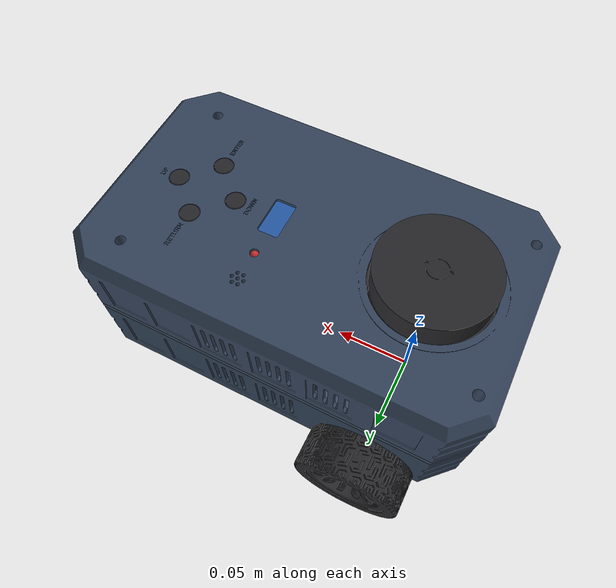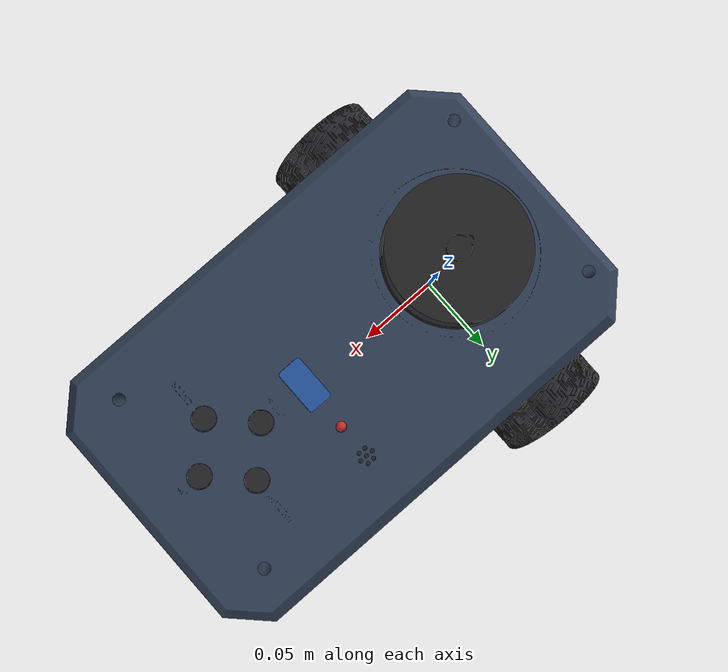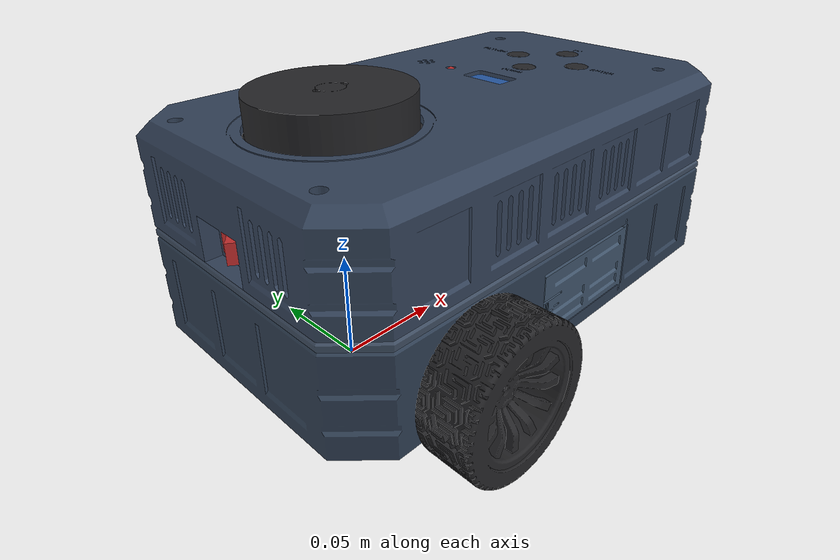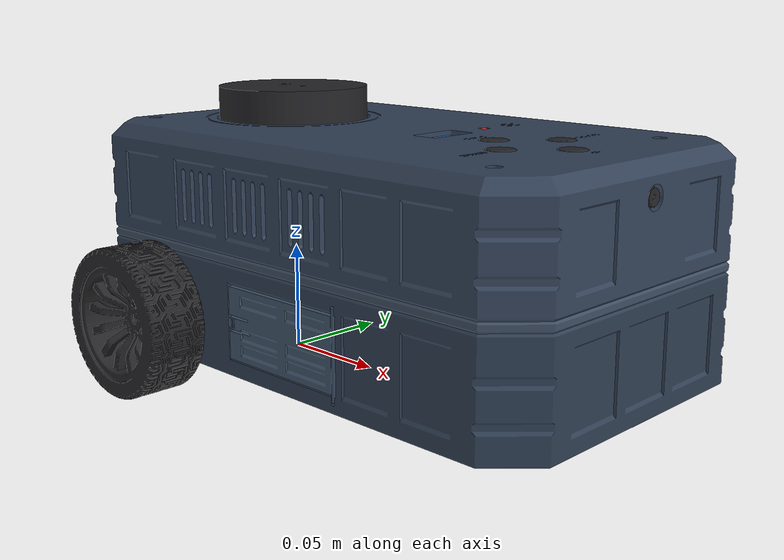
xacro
<?xml version="1.0"?>
<!-- ROS 2 URDF/XACRO Description: ros2_diffdrive_robot                                  -->
<!-- Generated from verified FreeCAD assembly (ROS2_DiffDrive_Robot.FCStd)               -->
<!-- Compatible with my_bot ros2_control, EKF, SLAM Toolbox, Nav2, and Gazebo Classic    -->
<robot xmlns:xacro="http://www.ros.org/wiki/xacro" name="ros2_diffdrive_robot">

  <!-- ========================== 1. XACRO ARGUMENTS ========================== -->
  <xacro:arg name="use_ros2_control" default="true"/>
  <xacro:arg name="use_sim" default="false"/>
  <xacro:arg name="publish_odom_tf" default="true"/>

  <!-- ========================== 2. XACRO PROPERTIES ========================= -->
  <!-- Drive wheels: Ø65.0 mm x 26.0 mm rubber tire, 181.0 mm center-to-center track -->
  <xacro:property name="wheel_radius"     value="0.0325"/>
  <xacro:property name="wheel_width"      value="0.0260"/>
  <xacro:property name="wheel_mass"       value="0.045"/>
  <xacro:property name="wheel_separation" value="0.1810"/>
  <xacro:property name="wheel_x_offset"   value="0.0000"/>
  <xacro:property name="ticks_per_rev"    value="1400"/>

  <!-- Derived wheel cylinder inertia -->
  <xacro:property name="wheel_I_axial" value="${0.5 * wheel_mass * wheel_radius * wheel_radius}"/>
  <xacro:property name="wheel_I_perp"  value="${(1.0/12.0) * wheel_mass * (3.0*wheel_radius*wheel_radius + wheel_width*wheel_width)}"/>

  <!-- JGA25-371 geared DC motor with encoder (Ø25 x 75 mm, gearbox face at |Y| = 69.8 mm) -->
  <xacro:property name="motor_mass"     value="0.085"/>
  <xacro:property name="motor_y_offset" value="0.0698"/>

  <!-- Front 5/8" (15.875 mm) steel ball caster at (X = +165.0 mm, Y = 0.0 mm) -->
  <xacro:property name="caster_radius"   value="0.0079375"/>
  <xacro:property name="caster_mass"     value="0.016"/>
  <xacro:property name="caster_I"        value="${(2.0/5.0) * caster_mass * caster_radius * caster_radius}"/>
  <xacro:property name="caster_x_offset" value="0.1650"/>
  <xacro:property name="base_z_offset"   value="${wheel_radius}"/>
  <xacro:property name="caster_z_offset" value="${caster_radius - wheel_radius}"/>

  <!-- Chassis envelope (250 x 150 mm, Z in [14.0, 112.0] mm -> 98.0 mm height) -->
  <xacro:property name="base_length" value="0.2500"/>
  <xacro:property name="base_width"  value="0.1500"/>
  <xacro:property name="base_height" value="0.0980"/>

  <!-- MPU9250 9-axis IMU at exact support-triangle centroid (X = +55.0 mm, Y = 0.0 mm, Z = 69.14 mm) -->
  <xacro:property name="imu_length"   value="0.02615"/>
  <xacro:property name="imu_width"    value="0.01560"/>
  <xacro:property name="imu_height"   value="0.01172"/>
  <xacro:property name="imu_x_offset" value="0.05500"/>
  <xacro:property name="imu_z_offset" value="0.03664"/>

  <!-- Front ESP32-CAM + MB (lens at X = +194.5 mm, Y = 0.0 mm, Z = 98.5 mm) -->
  <xacro:property name="cam_wid"      value="0.0291"/>
  <xacro:property name="cam_hgt"      value="0.0401"/>
  <xacro:property name="cam_thk"      value="0.0231"/>
  <xacro:property name="cam_x_offset" value="0.1945"/>
  <xacro:property name="cam_z_offset" value="0.0660"/>

  <!-- LDS02RR 360-deg LiDAR (turret axis collinear with rear axle X=0, Y=0; laser plane Z = 119.25 mm) -->
  <xacro:property name="lidar_x_offset"    value="0.00000"/>
  <xacro:property name="lidar_z_offset"    value="0.08675"/>
  <xacro:property name="lidar_body_radius" value="0.03500"/>
  <xacro:property name="lidar_body_len"    value="0.01500"/>

  <!-- ============================= 3. MATERIALS ============================= -->
  <material name="industrial_slate_blue"> <color rgba="0.20 0.26 0.35 1.0"/> </material>
  <material name="chassis_dark_blue">     <color rgba="0.18 0.24 0.32 1.0"/> </material>
  <material name="deck_steel_blue">       <color rgba="0.24 0.30 0.38 1.0"/> </material>
  <material name="door_hatch_blue">       <color rgba="0.25 0.33 0.42 1.0"/> </material>
  <material name="matte_black_rubber">    <color rgba="0.15 0.15 0.16 1.0"/> </material>
  <material name="brushed_aluminum">      <color rgba="0.70 0.72 0.75 1.0"/> </material>
  <material name="chrome_steel">          <color rgba="0.82 0.84 0.88 1.0"/> </material>
  <material name="battery_green">         <color rgba="0.22 0.50 0.30 1.0"/> </material>
  <material name="pcb_blue">              <color rgba="0.15 0.35 0.65 1.0"/> </material>
  <material name="switch_red">            <color rgba="0.78 0.18 0.18 1.0"/> </material>

  <!-- ========================== 4. BASE FOOTPRINT =========================== -->
  <link name="base_footprint"/>

  <joint name="base_footprint_joint" type="fixed">
    <parent link="base_footprint"/>
    <child link="base_link"/>
    <origin xyz="0.0 0.0 ${base_z_offset}" rpy="0 0 0"/>
  </joint>

  <!-- ============================= 5. BASE LINK ============================= -->
  <link name="base_link">
    <visual name="lower_chassis_visual">
      <origin xyz="0 0 0" rpy="0 0 0"/>
      <geometry>
        <mesh filename="package://ros2_diffdrive_description/meshes/lower_chassis.stl" scale="1.0 1.0 1.0"/>
      </geometry>
      <material name="chassis_dark_blue"/>
    </visual>

    <visual name="electronics_deck_visual">
      <origin xyz="0 0 0" rpy="0 0 0"/>
      <geometry>
        <mesh filename="package://ros2_diffdrive_description/meshes/electronics_deck.stl" scale="1.0 1.0 1.0"/>
      </geometry>
      <material name="deck_steel_blue"/>
    </visual>

    <visual name="upper_enclosure_visual">
      <origin xyz="0 0 0" rpy="0 0 0"/>
      <geometry>
        <mesh filename="package://ros2_diffdrive_description/meshes/upper_enclosure.stl" scale="1.0 1.0 1.0"/>
      </geometry>
      <material name="industrial_slate_blue"/>
    </visual>

    <visual name="drivetrain_static_visual">
      <origin xyz="0 0 0" rpy="0 0 0"/>
      <geometry>
        <mesh filename="package://ros2_diffdrive_description/meshes/drivetrain_static.stl" scale="1.0 1.0 1.0"/>
      </geometry>
      <material name="brushed_aluminum"/>
    </visual>

    <visual name="battery_pack_visual">
      <origin xyz="0 0 0" rpy="0 0 0"/>
      <geometry>
        <mesh filename="package://ros2_diffdrive_description/meshes/battery_pack.stl" scale="1.0 1.0 1.0"/>
      </geometry>
      <material name="battery_green"/>
    </visual>

    <visual name="ui_caps_visual">
      <origin xyz="0 0 0" rpy="0 0 0"/>
      <geometry>
        <mesh filename="package://ros2_diffdrive_description/meshes/ui_switches_caps.stl" scale="1.0 1.0 1.0"/>
      </geometry>
      <material name="matte_black_rubber"/>
    </visual>

    <visual name="ui_oled_visual">
      <origin xyz="0 0 0" rpy="0 0 0"/>
      <geometry>
        <mesh filename="package://ros2_diffdrive_description/meshes/ui_oled_switches.stl" scale="1.0 1.0 1.0"/>
      </geometry>
      <material name="pcb_blue"/>
    </visual>

    <visual name="red_accents_visual">
      <origin xyz="0 0 0" rpy="0 0 0"/>
      <geometry>
        <mesh filename="package://ros2_diffdrive_description/meshes/red_accents.stl" scale="1.0 1.0 1.0"/>
      </geometry>
      <material name="switch_red"/>
    </visual>

    <collision name="base_collision">
      <origin xyz="0.070 0.0 0.0305" rpy="0 0 0"/>
      <geometry>
        <box size="${base_length} ${base_width} ${base_height}"/>
      </geometry>
    </collision>

    <inertial>
      <origin xyz="0.055 0.0 0.025" rpy="0 0 0"/>
      <mass value="1.280"/>
      <inertia ixx="0.0038" ixy="0.0" ixz="0.0" iyy="0.0082" iyz="0.0" izz="0.0098"/>
    </inertial>
  </link>

  <!-- ========================= 6. LEFT DRIVE WHEEL ========================= -->
  <link name="left_wheel_link">
    <visual>
      <origin xyz="0 0 0" rpy="0 0 0"/>
      <geometry>
        <mesh filename="package://ros2_diffdrive_description/meshes/left_wheel.stl" scale="1.0 1.0 1.0"/>
      </geometry>
      <material name="matte_black_rubber"/>
    </visual>
    <collision>
      <origin xyz="0 0 0" rpy="1.5707963 0 0"/>
      <geometry>
        <cylinder radius="${wheel_radius}" length="${wheel_width}"/>
      </geometry>
    </collision>
    <inertial>
      <origin xyz="0 0 0" rpy="0 0 0"/>
      <mass value="${wheel_mass}"/>
      <inertia ixx="${wheel_I_perp}"  ixy="0.0" ixz="0.0"
               iyy="${wheel_I_axial}" iyz="0.0"
               izz="${wheel_I_perp}"/>
    </inertial>
  </link>

  <joint name="left_wheel_joint" type="continuous">
    <parent link="base_link"/>
    <child link="left_wheel_link"/>
    <origin xyz="${wheel_x_offset} ${wheel_separation / 2.0} 0.0" rpy="0 0 0"/>
    <axis xyz="0 1 0"/>
    <dynamics damping="0.01" friction="0.0"/>
  </joint>

  <!-- ========================= 7. RIGHT DRIVE WHEEL ======================== -->
  <link name="right_wheel_link">
    <visual>
      <origin xyz="0 0 0" rpy="0 0 0"/>
      <geometry>
        <mesh filename="package://ros2_diffdrive_description/meshes/right_wheel.stl" scale="1.0 1.0 1.0"/>
      </geometry>
      <material name="matte_black_rubber"/>
    </visual>
    <collision>
      <origin xyz="0 0 0" rpy="1.5707963 0 0"/>
      <geometry>
        <cylinder radius="${wheel_radius}" length="${wheel_width}"/>
      </geometry>
    </collision>
    <inertial>
      <origin xyz="0 0 0" rpy="0 0 0"/>
      <mass value="${wheel_mass}"/>
      <inertia ixx="${wheel_I_perp}"  ixy="0.0" ixz="0.0"
               iyy="${wheel_I_axial}" iyz="0.0"
               izz="${wheel_I_perp}"/>
    </inertial>
  </link>

  <joint name="right_wheel_joint" type="continuous">
    <parent link="base_link"/>
    <child link="right_wheel_link"/>
    <origin xyz="${wheel_x_offset} -${wheel_separation / 2.0} 0.0" rpy="0 0 0"/>
    <axis xyz="0 1 0"/>
    <dynamics damping="0.01" friction="0.0"/>
  </joint>

  <!-- =================== 8. LEFT & RIGHT JGA25-371 MOTORS ================== -->
  <link name="left_motor_link">
    <visual>
      <origin xyz="0 0 0" rpy="0 0 0"/>
      <geometry>
        <mesh filename="package://ros2_diffdrive_description/meshes/left_motor.stl" scale="1.0 1.0 1.0"/>
      </geometry>
      <material name="brushed_aluminum"/>
    </visual>
    <collision>
      <origin xyz="0 -0.030 0" rpy="1.5707963 0 0"/>
      <geometry>
        <cylinder radius="0.0125" length="0.063"/>
      </geometry>
    </collision>
    <inertial>
      <origin xyz="0 -0.030 0" rpy="0 0 0"/>
      <mass value="${motor_mass}"/>
      <inertia ixx="2.8e-05" ixy="0.0" ixz="0.0" iyy="6.6e-06" iyz="0.0" izz="2.8e-05"/>
    </inertial>
  </link>

  <joint name="left_motor_joint" type="fixed">
    <parent link="base_link"/>
    <child link="left_motor_link"/>
    <origin xyz="${wheel_x_offset} ${motor_y_offset} 0.0" rpy="0 0 0"/>
  </joint>

  <link name="right_motor_link">
    <visual>
      <origin xyz="0 0 0" rpy="0 0 0"/>
      <geometry>
        <mesh filename="package://ros2_diffdrive_description/meshes/right_motor.stl" scale="1.0 1.0 1.0"/>
      </geometry>
      <material name="brushed_aluminum"/>
    </visual>
    <collision>
      <origin xyz="0 0.030 0" rpy="1.5707963 0 0"/>
      <geometry>
        <cylinder radius="0.0125" length="0.063"/>
      </geometry>
    </collision>
    <inertial>
      <origin xyz="0 0.030 0" rpy="0 0 0"/>
      <mass value="${motor_mass}"/>
      <inertia ixx="2.8e-05" ixy="0.0" ixz="0.0" iyy="6.6e-06" iyz="0.0" izz="2.8e-05"/>
    </inertial>
  </link>

  <joint name="right_motor_joint" type="fixed">
    <parent link="base_link"/>
    <child link="right_motor_link"/>
    <origin xyz="${wheel_x_offset} -${motor_y_offset} 0.0" rpy="0 0 0"/>
  </joint>

  <!-- ========================= 9. FRONT BALL CASTER ======================== -->
  <link name="caster_link">
    <visual>
      <origin xyz="0 0 0" rpy="0 0 0"/>
      <geometry>
        <mesh filename="package://ros2_diffdrive_description/meshes/caster_ball.stl" scale="1.0 1.0 1.0"/>
      </geometry>
      <material name="chrome_steel"/>
    </visual>
    <collision>
      <origin xyz="0 0 0" rpy="0 0 0"/>
      <geometry>
        <sphere radius="${caster_radius}"/>
      </geometry>
    </collision>
    <inertial>
      <origin xyz="0 0 0" rpy="0 0 0"/>
      <mass value="${caster_mass}"/>
      <inertia ixx="${caster_I}" ixy="0.0" ixz="0.0"
               iyy="${caster_I}" iyz="0.0"
               izz="${caster_I}"/>
    </inertial>
  </link>

  <joint name="caster_joint" type="fixed">
    <parent link="base_link"/>
    <child link="caster_link"/>
    <origin xyz="${caster_x_offset} 0.0 ${caster_z_offset}" rpy="0 0 0"/>
  </joint>

  <!-- ==================== 10. SNAP-FIT PIVOT HINGED BATTERY DOOR ==================== -->
  <link name="battery_door_link">
    <visual>
      <origin xyz="0 0 0" rpy="0 0 0"/>
      <geometry>
        <mesh filename="package://ros2_diffdrive_description/meshes/battery_door.stl" scale="1.0 1.0 1.0"/>
      </geometry>
      <material name="door_hatch_blue"/>
    </visual>
    <collision>
      <origin xyz="-0.0315 0.0001 0.0" rpy="0 0 0"/>
      <geometry>
        <box size="0.0614 0.0030 0.0308"/>
      </geometry>
    </collision>
    <inertial>
      <origin xyz="-0.0315 0.0001 0.0" rpy="0 0 0"/>
      <mass value="0.008"/>
      <inertia ixx="1.0e-06" ixy="0.0" ixz="0.0" iyy="1.0e-06" iyz="0.0" izz="1.0e-06"/>
    </inertial>
  </link>

  <joint name="battery_door_joint" type="revolute">
    <parent link="base_link"/>
    <child link="battery_door_link"/>
    <origin xyz="0.1070 -0.0735 0.0045" rpy="0 0 0"/>
    <axis xyz="0 0 1"/>
    <limit lower="0.0" upper="1.5708" effort="10.0" velocity="2.0"/>
  </joint>

  <!-- ========== 11. MPU9250 9-AXIS IMU (SUPPORT-TRIANGLE CENTROID) ========= -->
  <link name="imu_link">
    <visual>
      <origin xyz="0 0 0" rpy="0 0 0"/>
      <geometry>
        <mesh filename="package://ros2_diffdrive_description/meshes/imu_mpu9250.stl" scale="1.0 1.0 1.0"/>
      </geometry>
      <material name="pcb_blue"/>
    </visual>
    <collision>
      <origin xyz="0 0 -0.003" rpy="0 0 0"/>
      <geometry>
        <box size="${imu_length} ${imu_width} ${imu_height}"/>
      </geometry>
    </collision>
    <inertial>
      <origin xyz="0 0 0" rpy="0 0 0"/>
      <mass value="0.010"/>
      <inertia ixx="1.0e-05" ixy="0.0" ixz="0.0"
               iyy="1.0e-05" iyz="0.0"
               izz="1.0e-05"/>
    </inertial>
  </link>

  <joint name="imu_joint" type="fixed">
    <parent link="base_link"/>
    <child link="imu_link"/>
    <origin xyz="${imu_x_offset} 0.0 ${imu_z_offset}" rpy="0 0 0"/>
  </joint>

  <!-- ================= 12. LDS02RR 360-DEG LASER SCANNER ================== -->
  <link name="lidar_link">
    <visual>
      <origin xyz="0 0 0" rpy="0 0 0"/>
      <geometry>
        <mesh filename="package://ros2_diffdrive_description/meshes/lds02rr_lidar.stl" scale="1.0 1.0 1.0"/>
      </geometry>
      <material name="matte_black_rubber"/>
    </visual>
    <collision>
      <origin xyz="0 0 0" rpy="0 0 0"/>
      <geometry>
        <cylinder radius="${lidar_body_radius}" length="${lidar_body_len}"/>
      </geometry>
    </collision>
    <inertial>
      <origin xyz="0 0 -0.015" rpy="0 0 0"/>
      <mass value="0.125"/>
      <inertia ixx="0.0001" ixy="0.0" ixz="0.0"
               iyy="0.0001" iyz="0.0"
               izz="0.0001"/>
    </inertial>
  </link>

  <joint name="lidar_joint" type="fixed">
    <parent link="base_link"/>
    <child link="lidar_link"/>
    <origin xyz="${lidar_x_offset} 0.0 ${lidar_z_offset}" rpy="0 0 0"/>
  </joint>

  <!-- Alias frame laser_frame -> lidar_link for Nav2 / SLAM Toolbox compatibility -->
  <link name="laser_frame"/>
  <joint name="laser_frame_joint" type="fixed">
    <parent link="lidar_link"/>
    <child link="laser_frame"/>
    <origin xyz="0 0 0" rpy="0 0 0"/>
  </joint>

  <!-- ===================== 13. FRONT ESP32-CAM SENSOR ====================== -->
  <link name="camera_link">
    <visual>
      <origin xyz="0 0 0" rpy="0 0 0"/>
      <geometry>
        <mesh filename="package://ros2_diffdrive_description/meshes/esp32_cam.stl" scale="1.0 1.0 1.0"/>
      </geometry>
      <material name="matte_black_rubber"/>
    </visual>
    <collision>
      <origin xyz="-0.0115 0 -0.0120" rpy="0 0 0"/>
      <geometry>
        <box size="${cam_thk} ${cam_wid} ${cam_hgt}"/>
      </geometry>
    </collision>
    <inertial>
      <origin xyz="-0.010 0 -0.010" rpy="0 0 0"/>
      <mass value="0.030"/>
      <inertia ixx="6.1e-06" ixy="0.0" ixz="0.0"
               iyy="5.4e-06" iyz="0.0"
               izz="3.5e-06"/>
    </inertial>
  </link>

  <joint name="camera_joint" type="fixed">
    <parent link="base_link"/>
    <child link="camera_link"/>
    <origin xyz="${cam_x_offset} 0.0 ${cam_z_offset}" rpy="0 0 0"/>
  </joint>

  <!-- Optical frame for Gazebo & ROS 2 camera pipelines (REP-104: +Z forward, +X right, +Y down) -->
  <link name="camera_optical_link"/>
  <joint name="camera_optical_joint" type="fixed">
    <parent link="camera_link"/>
    <child link="camera_optical_link"/>
    <origin xyz="0 0 0" rpy="-1.5707963 0 -1.5707963"/>
  </joint>

  <!-- 14. ROS2_CONTROL & GAZEBO DRIVE PLUGINS (ported from my_bot)            -->
  <xacro:if value="$(arg use_ros2_control)">
    <xacro:if value="$(arg use_sim)">
      <ros2_control name="GazeboSystem" type="system">
        <hardware>
          <plugin>gazebo_ros2_control/GazeboSystem</plugin>
        </hardware>
        <joint name="left_wheel_joint">
          <command_interface name="velocity">
            <param name="min">-50</param>
            <param name="max">50</param>
          </command_interface>
          <state_interface name="position"/>
          <state_interface name="velocity"/>
        </joint>
        <joint name="right_wheel_joint">
          <command_interface name="velocity">
            <param name="min">-50</param>
            <param name="max">50</param>
          </command_interface>
          <state_interface name="position"/>
          <state_interface name="velocity"/>
        </joint>
      </ros2_control>
      <gazebo>
        <plugin name="gazebo_ros2_control" filename="libgazebo_ros2_control.so">
          <robot_param>robot_description</robot_param>
          <robot_param_node>robot_state_publisher</robot_param_node>
          <parameters>$(find ros2_diffdrive_description)/config/my_bot_controllers.yaml</parameters>
          <update_rate>50</update_rate>
        </plugin>
      </gazebo>
    </xacro:if>

    <xacro:unless value="$(arg use_sim)">
      <ros2_control name="my_bot_system" type="system">
        <hardware>
          <plugin>my_bot_hardware/MyBotSystem</plugin>
          <param name="left_ticks_topic">/left_motor_ticks</param>
          <param name="right_ticks_topic">/right_motor_ticks</param>
          <param name="cmd_vel_topic">/cmd_vel</param>
          <param name="ticks_per_rev">${ticks_per_rev}</param>
          <param name="wheel_radius">${wheel_radius}</param>
          <param name="wheel_separation">${wheel_separation}</param>
        </hardware>
        <joint name="left_wheel_joint">
          <command_interface name="velocity">
            <param name="min">-50</param>
            <param name="max">50</param>
          </command_interface>
          <state_interface name="position"/>
          <state_interface name="velocity"/>
        </joint>
        <joint name="right_wheel_joint">
          <command_interface name="velocity">
            <param name="min">-50</param>
            <param name="max">50</param>
          </command_interface>
          <state_interface name="position"/>
          <state_interface name="velocity"/>
        </joint>
      </ros2_control>
    </xacro:unless>
  </xacro:if>

  <!-- Legacy Gazebo diff_drive + joint_state_publisher fallback (when use_ros2_control:=false) -->
  <xacro:unless value="$(arg use_ros2_control)">
    <gazebo>
      <plugin name="diff_drive" filename="libgazebo_ros_diff_drive.so">
        <ros>
          <namespace>/</namespace>
        </ros>
        <left_joint>left_wheel_joint</left_joint>
        <right_joint>right_wheel_joint</right_joint>
        <wheel_separation>${wheel_separation}</wheel_separation>
        <wheel_diameter>${wheel_radius * 2.0}</wheel_diameter>
        <max_wheel_torque>1.2</max_wheel_torque>
        <max_wheel_acceleration>5.0</max_wheel_acceleration>
        <command_topic>cmd_vel</command_topic>
        <publish_odom>true</publish_odom>
        <publish_odom_tf>$(arg publish_odom_tf)</publish_odom_tf>
        <publish_wheel_tf>false</publish_wheel_tf>
        <odometry_topic>odom</odometry_topic>
        <odometry_frame>odom</odometry_frame>
        <robot_base_frame>base_footprint</robot_base_frame>
      </plugin>
    </gazebo>

    <gazebo>
      <plugin name="gazebo_ros_joint_state_publisher" filename="libgazebo_ros_joint_state_publisher.so">
        <ros>
          <namespace>/</namespace>
          <remapping>~/out:=joint_states</remapping>
        </ros>
        <update_rate>30</update_rate>
        <joint_name>right_wheel_joint</joint_name>
        <joint_name>left_wheel_joint</joint_name>
      </plugin>
    </gazebo>
  </xacro:unless>

  <!-- 15. GAZEBO SENSOR PLUGINS (IMU, 360° LiDAR, Front ESP32-CAM)            -->
  <gazebo reference="imu_link">
    <sensor name="imu_sensor" type="imu">
      <always_on>true</always_on>
      <visualize>true</visualize>
      <update_rate>30</update_rate>
      <plugin name="imu_plugin" filename="libgazebo_ros_imu_sensor.so">
        <ros>
          <namespace>/</namespace>
          <remapping>~/out:=imu</remapping>
        </ros>
        <initial_orientation_as_reference>false</initial_orientation_as_reference>
      </plugin>
    </sensor>
  </gazebo>

  <gazebo reference="lidar_link">
    <sensor name="lidar" type="ray">
      <pose>0 0 0 0 0 0</pose>
      <always_on>true</always_on>
      <visualize>true</visualize>
      <update_rate>15</update_rate>
      <ray>
        <scan>
          <horizontal>
            <samples>360</samples>
            <resolution>1.0</resolution>
            <min_angle>-3.1416</min_angle>
            <max_angle>3.1416</max_angle>
          </horizontal>
        </scan>
        <range>
          <min>0.05</min>
          <max>3.5</max>
          <resolution>0.01</resolution>
        </range>
        <noise>
          <type>gaussian</type>
          <mean>0.0</mean>
          <stddev>0.005</stddev>
        </noise>
      </ray>
      <plugin name="gazebo_ros_ray_sensor" filename="libgazebo_ros_ray_sensor.so">
        <ros>
          <namespace>/</namespace>
          <remapping>~/out:=scan</remapping>
        </ros>
        <output_type>sensor_msgs/LaserScan</output_type>
        <frame_name>lidar_link</frame_name>
      </plugin>
    </sensor>
  </gazebo>

  <gazebo reference="camera_link">
    <sensor name="front_camera" type="camera">
      <pose>0 0 0 0 0 0</pose>
      <always_on>true</always_on>
      <visualize>true</visualize>
      <update_rate>30</update_rate>
      <camera name="front_camera">
        <horizontal_fov>1.1345</horizontal_fov>
        <image>
          <width>640</width>
          <height>480</height>
          <format>R8G8B8</format>
        </image>
        <clip>
          <near>0.05</near>
          <far>10.0</far>
        </clip>
      </camera>
      <plugin name="gazebo_ros_camera" filename="libgazebo_ros_camera.so">
        <ros>
          <namespace>/</namespace>
        </ros>
        <camera_name>front_camera</camera_name>
        <frame_name>camera_optical_link</frame_name>
        <min_depth>0.05</min_depth>
        <max_depth>10.0</max_depth>
      </plugin>
    </sensor>
  </gazebo>

  <!-- 16. GAZEBO CONTACT & FRICTION PARAMETERS (anti-jitter)                  -->
  <gazebo reference="right_wheel_link">
    <mu1>1.0</mu1>
    <mu2>1.0</mu2>
    <kp>1000000.0</kp>
    <kd>100.0</kd>
    <minDepth>0.001</minDepth>
    <maxVel>0.0</maxVel>
  </gazebo>

  <gazebo reference="left_wheel_link">
    <mu1>1.0</mu1>
    <mu2>1.0</mu2>
    <kp>1000000.0</kp>
    <kd>100.0</kd>
    <minDepth>0.001</minDepth>
    <maxVel>0.0</maxVel>
  </gazebo>

  <gazebo reference="caster_link">
    <mu1>0.0</mu1>
    <mu2>0.0</mu2>
    <kp>1000000.0</kp>
    <kd>100.0</kd>
    <minDepth>0.001</minDepth>
    <maxVel>0.0</maxVel>
  </gazebo>

  <gazebo reference="base_link">
    <mu1>0.1</mu1>
    <mu2>0.1</mu2>
    <kp>1000000.0</kp>
    <kd>100.0</kd>
    <selfCollide>false</selfCollide>
  </gazebo>

</robot>
